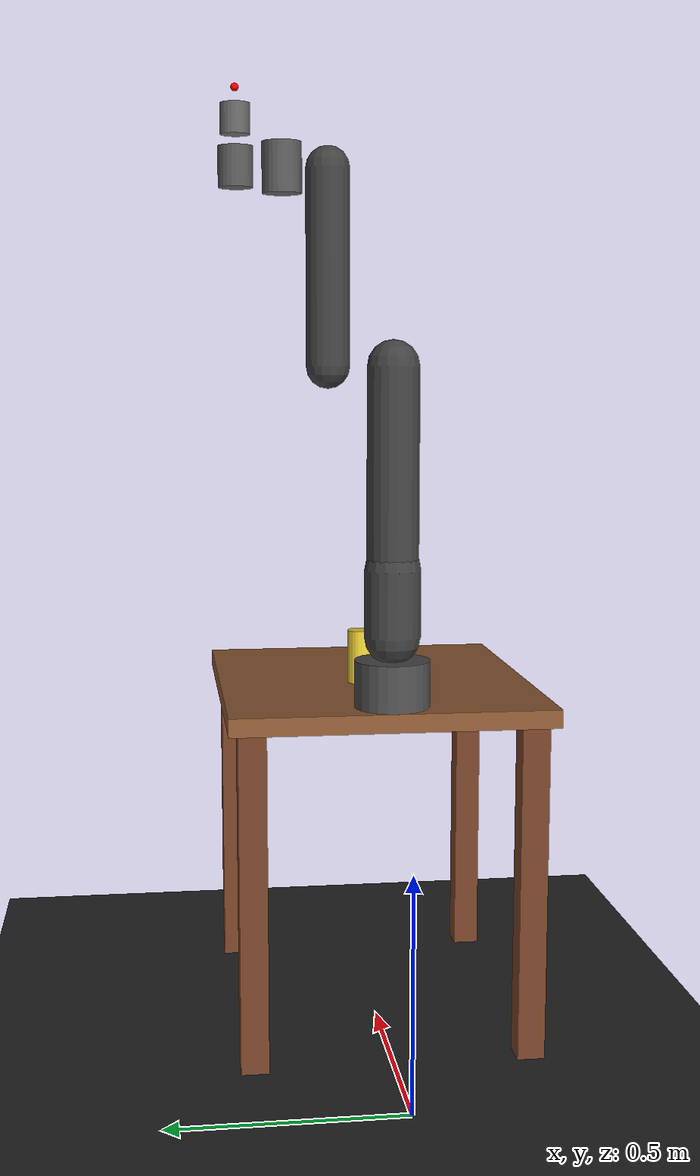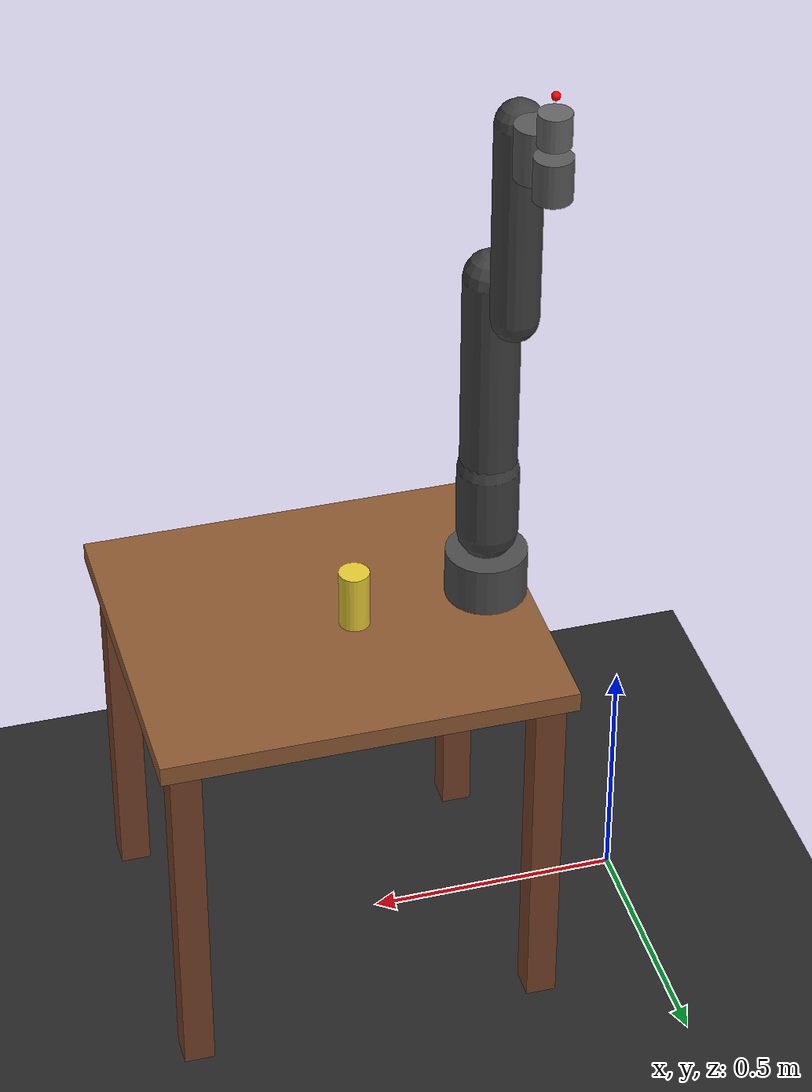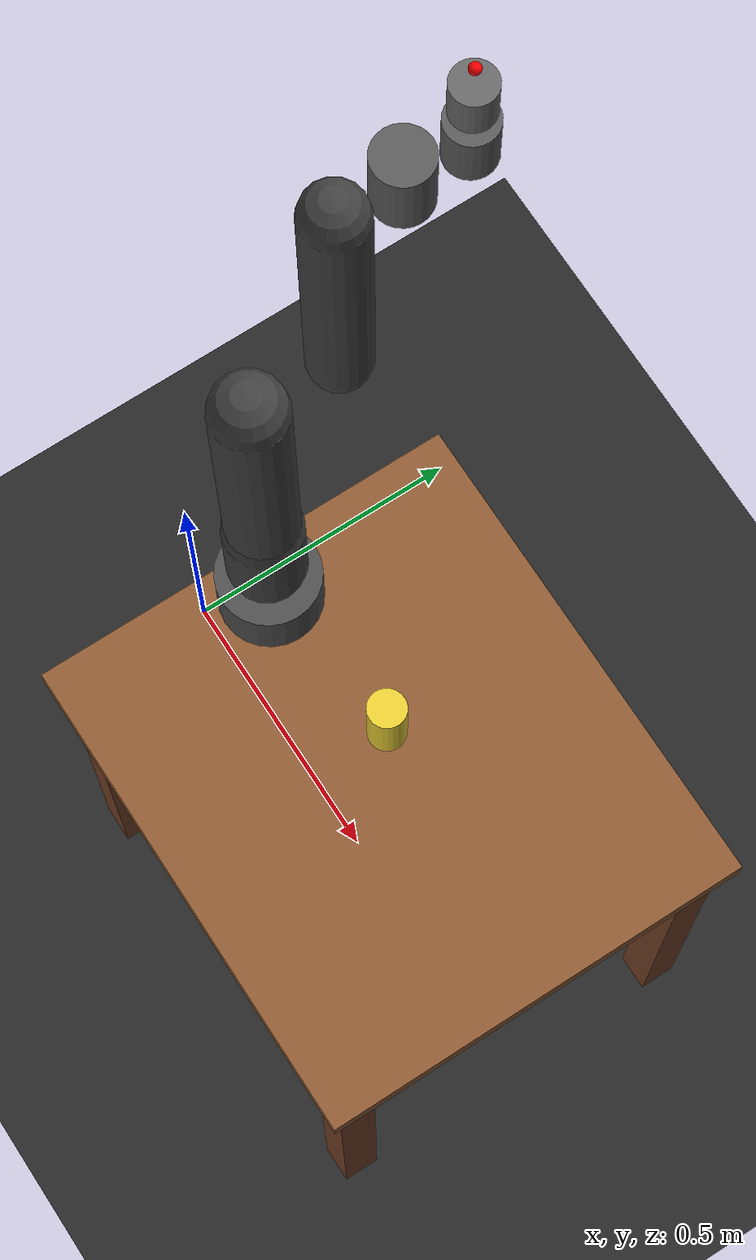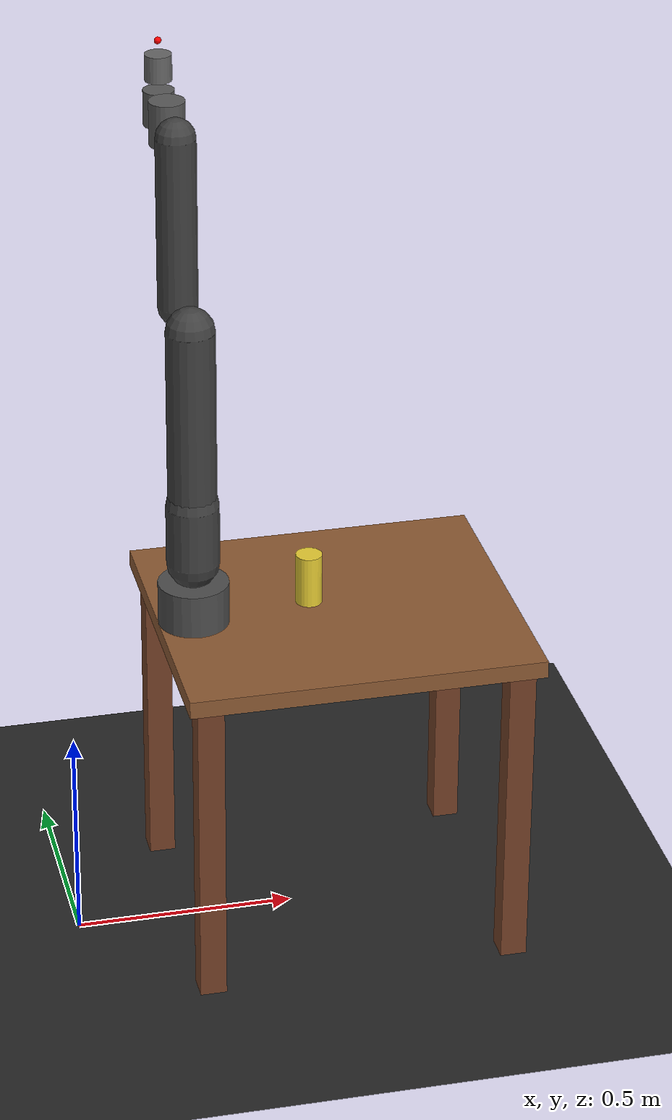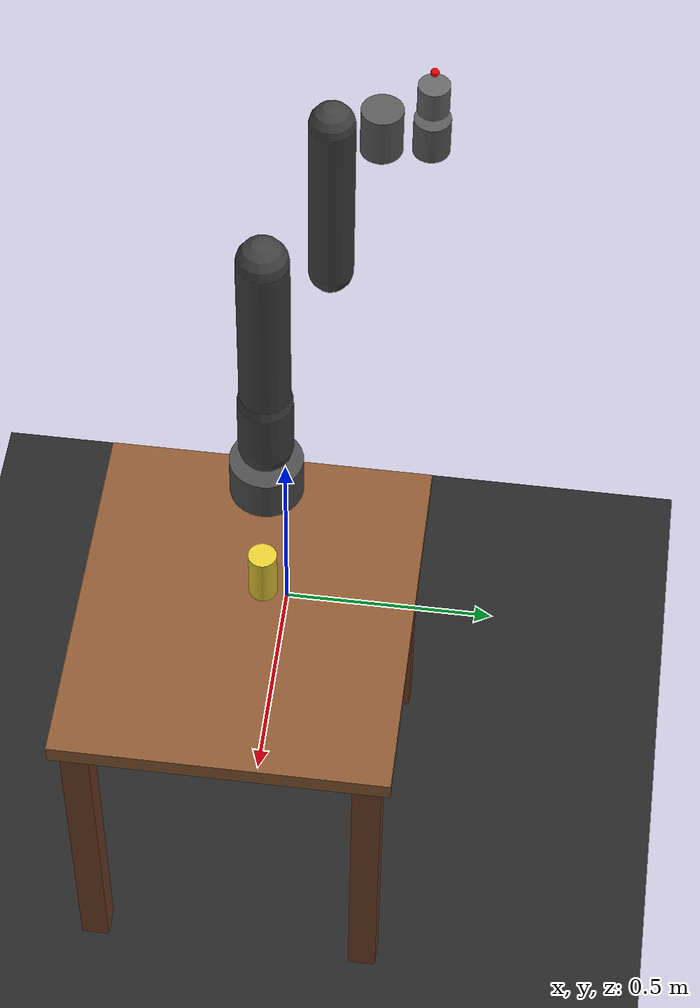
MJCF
<?xml version="1.0" encoding="UTF-8"?>
<mujoco model="ur5e_table_cup_scene">
  <compiler angle="radian" coordinate="local"/>
  <option timestep="0.002" gravity="0 0 -9.81" integrator="implicitfast"/>
  <default>
    <joint damping="1" armature="0.01" limited="true"/>
    <geom friction="1 0.5 0.5" rgba="0.8 0.8 0.8 1"/>
  </default>

  <worldbody>
    <light pos="0 0 2.5" dir="0 0 -1" diffuse="0.8 0.8 0.8" specular="0.2 0.2 0.2"/>
    <camera name="front" pos="1.2 -1.2 1.4" xyaxes="0 -1 0 0 0 1"/>
    <camera name="side" pos="-1.0 1.5 1.5" xyaxes="1 0 0 0 0 1"/>
    <camera name="top" pos="0.1 0 2.2" xyaxes="1 0 0 0 1 0"/>

    <geom name="floor" type="plane" size="2 2 0.1" pos="0 0 0" rgba="0.15 0.15 0.15 1"/>

    <!-- 桌子（桌面顶面 z = 0.76 + 0.02 = 0.78） -->
    <body name="table" pos="0.6 0 0">
      <geom name="table_top" type="box" size="0.4 0.35 0.02" pos="0 0 0.76" rgba="0.55 0.35 0.2 1" contype="1" conaffinity="1"/>
      <geom name="table_leg1" type="box" size="0.03 0.03 0.38" pos="0.35 0.3 0.38" rgba="0.45 0.25 0.15 1"/>
      <geom name="table_leg2" type="box" size="0.03 0.03 0.38" pos="0.35 -0.3 0.38" rgba="0.45 0.25 0.15 1"/>
      <geom name="table_leg3" type="box" size="0.03 0.03 0.38" pos="-0.35 0.3 0.38" rgba="0.45 0.25 0.15 1"/>
      <geom name="table_leg4" type="box" size="0.03 0.03 0.38" pos="-0.35 -0.3 0.38" rgba="0.45 0.25 0.15 1"/>
    </body>

    <!-- 杯子（桌面 z≈0.78，杯子高 0.06，中心 0.78+0.06=0.84） -->
    <body name="cup" pos="0.55 0.03 0.84">
      <joint name="cup_free" type="free"/>
      <inertial pos="0 0 0" mass="0.3" diaginertia="0.0005 0.0005 0.0005"/>
      <geom name="cup_geom" type="cylinder" size="0.03 0.06" rgba="0.9 0.8 0.2 1" contype="1" conaffinity="1"/>
    </body>

    <!-- UR5e 机械臂：底座放在桌面上（z=0.78），整条臂朝上展开 -->
    <body name="ur5e_base" pos="0.28 0 0.83">
      <inertial pos="0 0 0" mass="4" diaginertia="0.03 0.03 0.04"/>
      <geom name="base_geom" type="cylinder" size="0.08 0.05" rgba="0.3 0.3 0.3 1"/>

      <body name="shoulder_link" pos="0 0 0.10">
        <joint name="shoulder_pan_joint" type="hinge" axis="0 0 1" range="-6.28 6.28"/>
        <geom name="shoulder_geom" type="capsule" fromto="0 0 0 0 0 0.14" size="0.06" rgba="0.25 0.25 0.25 1"/>

        <body name="upper_arm_link" pos="0 0 0.14">
          <joint name="shoulder_lift_joint" type="hinge" axis="0 1 0" range="-6.28 6.28"/>
          <geom name="upper_arm_geom" type="capsule" fromto="0 0 0 0 0 0.42" size="0.055" rgba="0.25 0.25 0.25 1"/>

          <body name="forearm_link" pos="0 0.135 0.42">
            <joint name="elbow_joint" type="hinge" axis="0 1 0" range="-3.14 3.14"/>
            <geom name="forearm_geom" type="capsule" fromto="0 0 0 0 0 0.39" size="0.045" rgba="0.25 0.25 0.25 1"/>

            <body name="wrist_1_link" pos="0 0.092 0.39">
              <joint name="wrist_1_joint" type="hinge" axis="0 1 0" range="-6.28 6.28"/>
              <geom name="wrist1_geom" type="cylinder" size="0.04 0.05" rgba="0.35 0.35 0.35 1"/>

              <body name="wrist_2_link" pos="0 0.092 0">
                <joint name="wrist_2_joint" type="hinge" axis="0 0 1" range="-6.28 6.28"/>
                <geom name="wrist2_geom" type="cylinder" size="0.035 0.04" rgba="0.35 0.35 0.35 1"/>

                <body name="wrist_3_link" pos="0 0 0.092">
                  <joint name="wrist_3_joint" type="hinge" axis="0 1 0" range="-6.28 6.28"/>
                  <geom name="wrist3_geom" type="cylinder" size="0.03 0.03" rgba="0.4 0.4 0.4 1"/>
                  <site name="attachment_site" pos="0 0 0.06" size="0.008" rgba="1 0 0 1"/>
                </body>
              </body>
            </body>
          </body>
        </body>
      </body>
    </body>
  </worldbody>

  <actuator>
    <position joint="shoulder_pan_joint" kp="80"/>
    <position joint="shoulder_lift_joint" kp="80"/>
    <position joint="elbow_joint" kp="70"/>
    <position joint="wrist_1_joint" kp="50"/>
    <position joint="wrist_2_joint" kp="50"/>
    <position joint="wrist_3_joint" kp="30"/>
  </actuator>
</mujoco>
